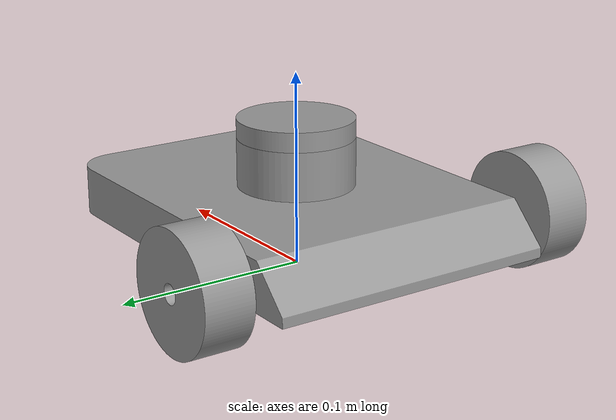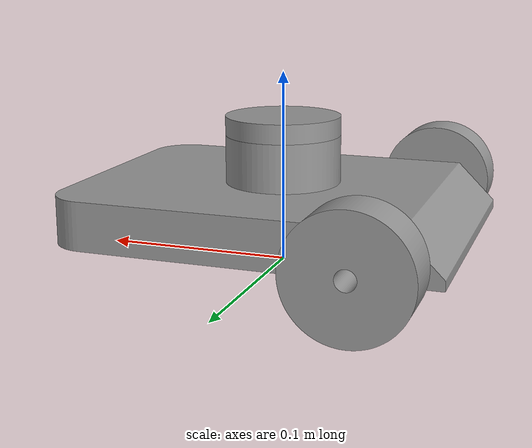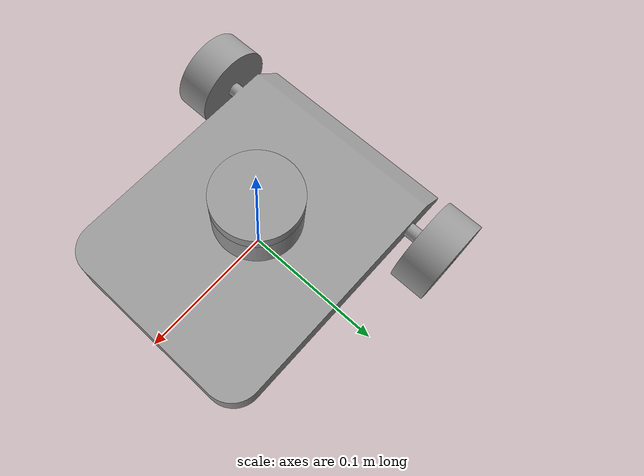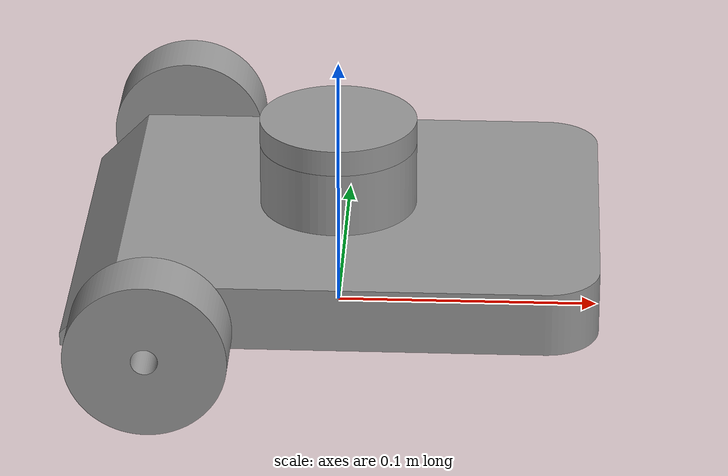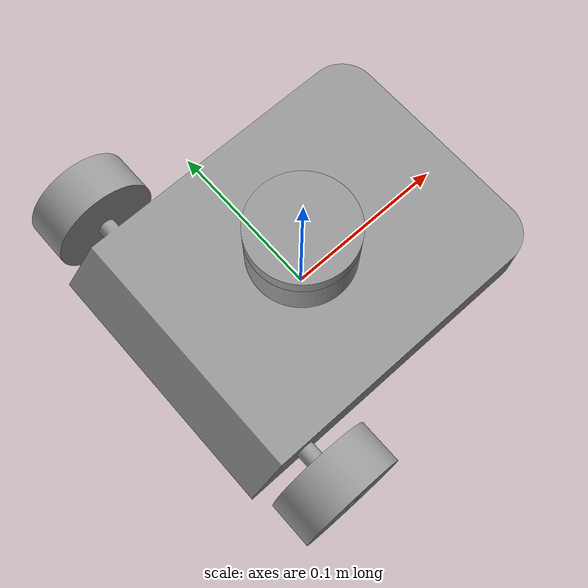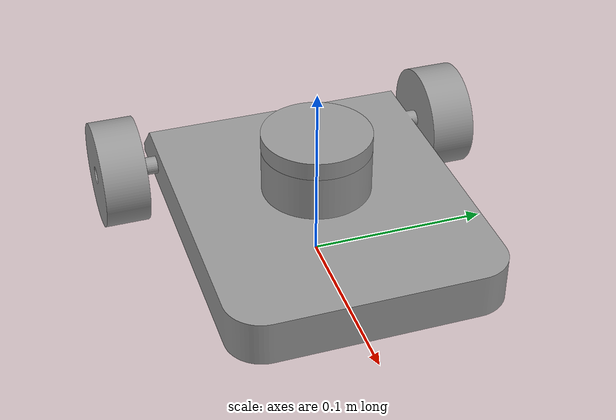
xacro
<?xml version="1.0" ?>
<robot name="wall_bot" xmlns:xacro="http://www.ros.org/wiki/xacro">

  <xacro:include filename="$(find wall_follower_bot)/models/urdf/materials.xacro"/>
  <xacro:include filename="$(find wall_follower_bot)/models/urdf/wall_bot.gazebo" />

  <!-- Base Link -->
  <link name="base_link">
    <inertial>
      <origin xyz="0.0029 0.0 0.032" rpy="0 0 0"/>
      <mass value="0.835"/>
      <inertia ixx="0.0015" iyy="0.0024" izz="0.0038" ixy="0.0" iyz="0.0" ixz="-1.2e-05"/>
    </inertial>
    <visual>
      <origin xyz="0 0 0" rpy="0 0 0"/>
      <geometry>
        <mesh filename="$(find wall_follower_bot)/models/meshes/base_link.stl" scale="0.001 0.001 0.001"/>
      </geometry>
      <material name="grey"/>
    </visual>
    <collision>
      <origin xyz="0 0 0" rpy="0 0 0"/>
      <geometry>
        <mesh filename="$(find wall_follower_bot)/models/meshes/base_link.stl" scale="0.001 0.001 0.001"/>
      </geometry>
    </collision>
  </link>

  <gazebo reference="base_link">
    <material>Gazebo/grey</material>
  </gazebo>

  <!-- Right Wheel -->
  <link name="right_wheel_1">
    <inertial>
      <origin xyz="0 -0.0125 0.0" rpy="0 0 0"/>
      <mass value="0.0082"/>
      <inertia ixx="2e-06" ixy="0.0" ixz="0.0" iyy="4e-06" iyz="0.0" izz="2e-06"/>
    </inertial>
    <visual>
      <origin xyz="0.065 0.085 -0.03" rpy="0 0 0"/>
      <geometry>
        <mesh filename="$(find wall_follower_bot)/models/meshes/right_wheel_1.stl" scale="0.001 0.001 0.001"/>
      </geometry>
      <material name="grey"/>
    </visual>
    <collision>
      <origin xyz="0.065 0.085 -0.03" rpy="0 0 0"/>
      <geometry>
        <mesh filename="$(find wall_follower_bot)/models/meshes/right_wheel_1.stl" scale="0.001 0.001 0.001"/>
      </geometry>
    </collision>
  </link>

  <gazebo reference="right_wheel_1">
    <material>Gazebo/grey</material>
  </gazebo>

  <!-- Left Wheel -->
  <link name="left_wheel_1">
    <inertial>
      <origin xyz="0 0.0125 0.0" rpy="0 0 0"/>
      <mass value="0.0082"/>
      <inertia ixx="2e-06" ixy="0.0" ixz="0.0" iyy="4e-06" iyz="0.0" izz="2e-06"/>
    </inertial>
    <visual>
      <origin xyz="0.065 -0.085 -0.03" rpy="0 0 0"/>
      <geometry>
        <mesh filename="$(find wall_follower_bot)/models/meshes/left_wheel_1.stl" scale="0.001 0.001 0.001"/>
      </geometry>
      <material name="grey"/>
    </visual>
    <collision>
      <origin xyz="0.065 -0.085 -0.03" rpy="0 0 0"/>
      <geometry>
        <mesh filename="$(find wall_follower_bot)/models/meshes/left_wheel_1.stl" scale="0.001 0.001 0.001"/>
      </geometry>
    </collision>
  </link>

  <gazebo reference="left_wheel_1">
    <material>Gazebo/grey</material>
  </gazebo>

  <!-- Castor -->
  <link name="castor_1">
    <inertial>
      <origin xyz="-0.03 0.0 -0.00675" rpy="0 0 0"/>
      <mass value="0.069"/>
      <inertia ixx="5e-06" ixy="0.0" ixz="0.0" iyy="5e-06" iyz="0.0" izz="7e-06"/>
    </inertial>
    <visual>
      <origin xyz="-0.1 -0.0 -0.0175" rpy="0 0 0"/>
      <geometry>
        <mesh filename="$(find wall_follower_bot)/models/meshes/castor_1.stl" scale="0.001 0.001 0.001"/>
      </geometry>
      <material name="grey"/>
    </visual>
    <collision>
      <origin xyz="-0.1 -0.0 -0.0175" rpy="0 0 0"/>
      <geometry>
        <mesh filename="$(find wall_follower_bot)/models/meshes/castor_1.stl" scale="0.001 0.001 0.001"/>
      </geometry>
    </collision>
  </link>

  <!-- Lidar -->
  <link name="lidar_1">
    <inertial>
      <origin xyz="0.0 0.0 0.005" rpy="0 0 0"/>
      <mass value="0.222"/>
      <inertia ixx="5.2e-05" ixy="0.0" ixz="0.0" iyy="5.2e-05" iyz="0.0" izz="0.0001"/>
    </inertial>
    <visual>
      <origin xyz="-0.0 -0.0 -0.0675" rpy="0 0 0"/>
      <geometry>
        <mesh filename="$(find wall_follower_bot)/models/meshes/lidar_1.stl" scale="0.001 0.001 0.001"/>
      </geometry>
      <material name="grey"/>
    </visual>
    <collision>
      <origin xyz="-0.0 -0.0 -0.0675" rpy="0 0 0"/>
      <geometry>
        <mesh filename="$(find wall_follower_bot)/models/meshes/lidar_1.stl" scale="0.001 0.001 0.001"/>
      </geometry>
    </collision>
  </link>

  <!-- Joints -->
  <joint name="right_wheel_joint" type="continuous">
    <origin xyz="-0.065 -0.085 0.03" rpy="0 0 0"/>
    <parent link="base_link"/>
    <child link="right_wheel_1"/>
    <axis xyz="0.0 1.0 0.0"/>
  </joint>

  <joint name="left_wheel_joint" type="continuous">
    <origin xyz="-0.065 0.085 0.03" rpy="0 0 0"/>
    <parent link="base_link"/>
    <child link="left_wheel_1"/>
    <axis xyz="0.0 1.0 0.0"/>
  </joint>

  <joint name="castor_joint" type="fixed">
    <origin xyz="0.1 0.0 0.0175" rpy="0 0 0"/>
    <parent link="base_link"/>
    <child link="castor_1"/>
  </joint>

  <joint name="lidar_joint" type="fixed">
    <origin xyz="0.0 0.0 0.0675" rpy="0 0 0"/>
    <parent link="base_link"/>
    <child link="lidar_1"/>
  </joint>

</robot>

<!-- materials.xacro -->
<robot name="wall_bot" xmlns:xacro="http://www.ros.org/wiki/xacro" >

<material name="silver">
  <color rgba="0.700 0.700 0.700 1.000"/>
</material>

</robot>

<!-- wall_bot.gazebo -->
<robot name="wall_bot" xmlns:xacro="http://www.ros.org/wiki/xacro" >

<xacro:property name="body_color" value="Gazebo/Silver" />

<gazebo reference="base_link">
  <material>${body_color}</material>
  <mu1>0.2</mu1>
  <mu2>0.2</mu2>
  <selfCollide>true</selfCollide>
  <gravity>true</gravity>
</gazebo>

<gazebo reference="right_wheel_1">
  <material>${body_color}</material>
  <mu1>1.0</mu1>
  <mu2>1.0</mu2>
  <selfCollide>true</selfCollide>
</gazebo>

<gazebo reference="left_wheel_1">
  <material>${body_color}</material>
  <mu1>1.0</mu1>
  <mu2>1.0</mu2>
  <selfCollide>true</selfCollide>
</gazebo>

<gazebo reference="castor_1">
  <material>${body_color}</material>
  <mu1>0.02</mu1>
  <mu2>0.02</mu2>
  <selfCollide>true</selfCollide>
</gazebo>

<gazebo reference="lidar_1">
  <material>${body_color}</material>
  <mu1>0.2</mu1>
  <mu2>0.2</mu2>
  <selfCollide>true</selfCollide>
</gazebo>

<!-- Differential drive plugin for gazebo -->
	<gazebo>
	<plugin name='diff_drive_ttb' filename='libgazebo_ros_diff_drive.so'>
		<ros>
		</ros>

		<!-- wheels -->
		<left_joint>left_wheel_joint</left_joint>
		<right_joint>right_wheel_joint</right_joint>

		<!-- kinematics -->
		<wheel_separation>0.19</wheel_separation>
		<wheel_diameter>0.065</wheel_diameter>

		<!-- limits -->
		<max_wheel_torque>20</max_wheel_torque>
		<max_wheel_acceleration>1.0</max_wheel_acceleration>

		<!-- output -->
		<publish_odom>true</publish_odom>
		<publish_odom_tf>true</publish_odom_tf>
		<publish_wheel_tf>false</publish_wheel_tf>

		<odometry_frame>odom</odometry_frame>
		<robot_base_frame>base_link</robot_base_frame>
	</plugin>
	</gazebo>

<!--  ##########  LIDAR PLUGIN  ##########  -->

	<gazebo reference="lidar_1">
		<sensor name="ydlidar" type="ray">
			<always_on>true</always_on>
			<visualize>true</visualize>
			<update_rate>10</update_rate>
			<ray>
			<scan>
				<horizontal>
				<samples>720</samples>
				<resolution>1.000000</resolution>
				<min_angle>-3.14</min_angle>
				<max_angle>3.14</max_angle>
				</horizontal>
			</scan>
			<range>
				<min>0.05</min>
				<max>20.0</max>
				<resolution>0.015000</resolution>
			</range>
			<noise>
				<type>gaussian</type>
				<mean>0.0</mean>
				<stddev>0.01</stddev>
			</noise>
			</ray>
			<plugin name="ttb_lidar" filename="libgazebo_ros_ray_sensor.so">
			<ros>
				<remapping>~/scan:=scan</remapping>
			</ros>
			<output_type>sensor_msgs/LaserScan</output_type>
			<frame_name>lidar_1</frame_name>
			</plugin>
		</sensor>
		</gazebo>
</robot>
